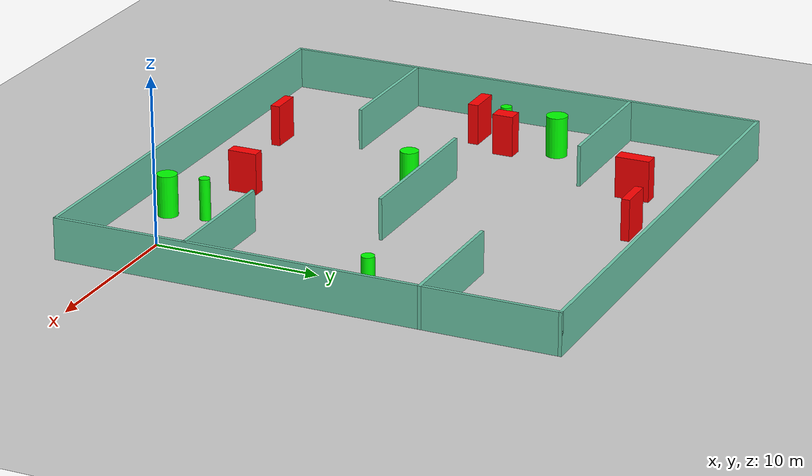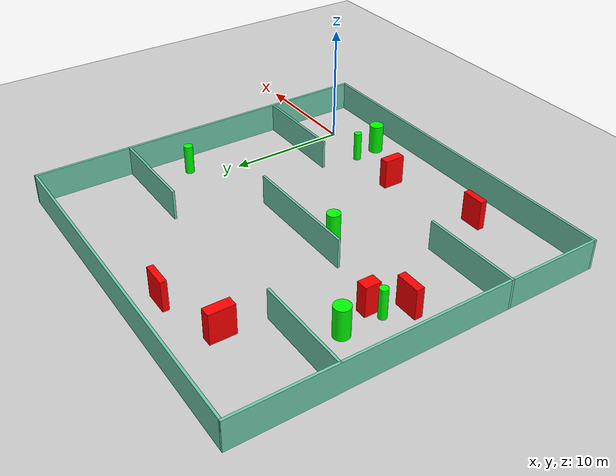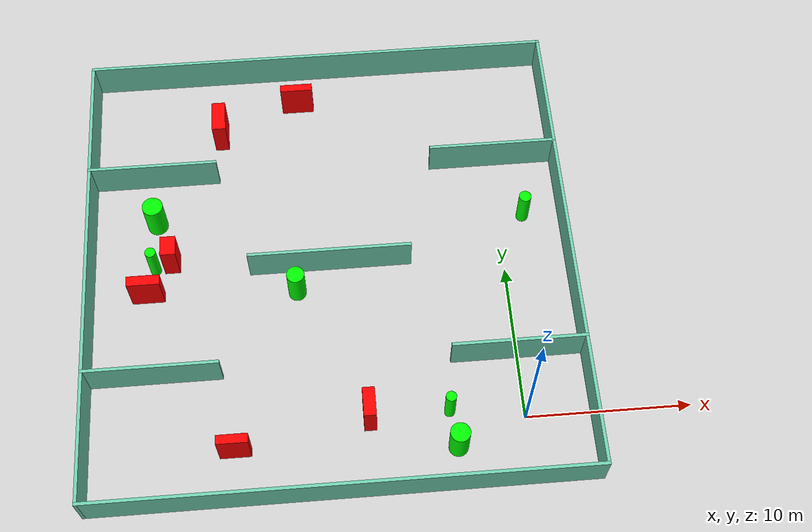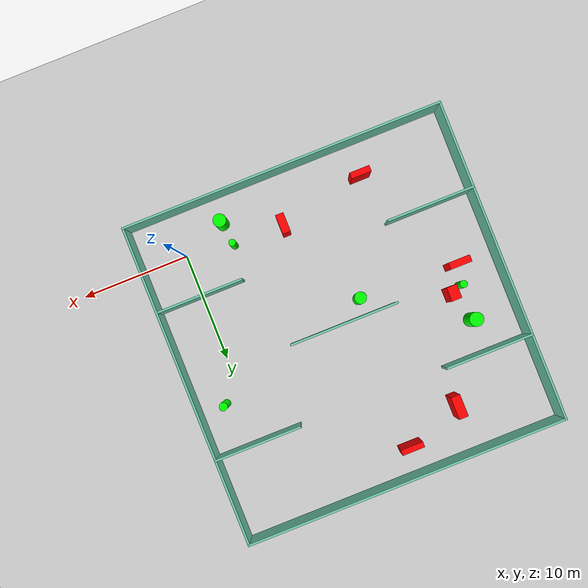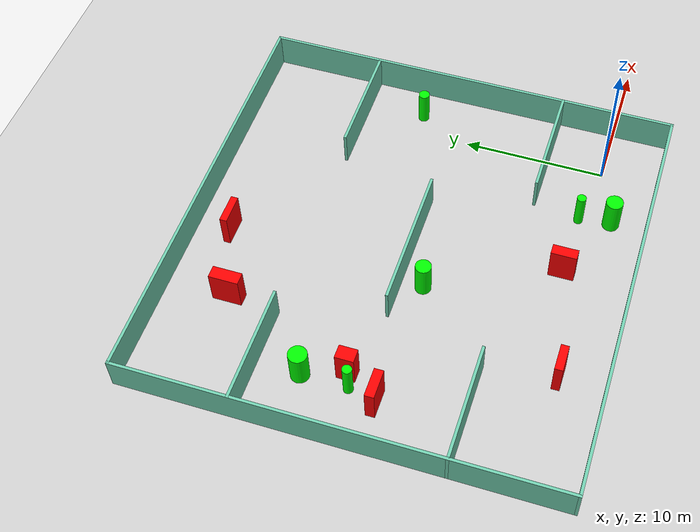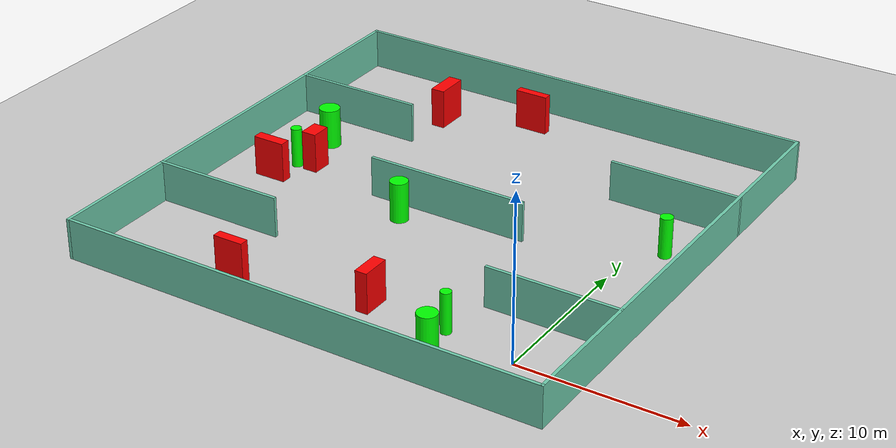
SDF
<sdf version="1.7">
 <world name="default">
  <light name="sun" type="directional">
   <pose>0 0 10 0 -0 0</pose>
   <diffuse>0.8 0.8 0.8 1</diffuse>
   <specular>0.2 0.2 0.2 1</specular>
   <attenuation>
    <range>1000</range>
    <constant>0.9</constant>
    <linear>0.01</linear>
    <quadratic>0.001</quadratic>
   </attenuation>
   <direction>-0.5 0.1 -0.9</direction>
   <spot><inner_angle>0</inner_angle><outer_angle>0</outer_angle><falloff>0</falloff></spot>
  </light>
  <model name="ground_plane">
   <static>1</static>
   <link name="link">
    <collision name="collision">
     <geometry><plane><normal>0 0 1</normal><size>100 100</size></plane></geometry>
     <surface>
      <contact><collide_bitmask>65535</collide_bitmask></contact>
      <friction><ode><mu>100</mu><mu2>50</mu2></ode></friction>
     </surface>
    </collision>
    <visual name="visual">
     <cast_shadows>0</cast_shadows>
     <geometry><plane><normal>0 0 1</normal><size>100 100</size></plane></geometry>
     <material>
      <script><uri>file://media/materials/scripts/gazebo.material</uri><name>Gazebo/Grey</name></script>
     </material>
    </visual>
   </link>
  </model>
  <gravity>0 0 -9.8</gravity>
  <magnetic_field>6e-06 2.3e-05 -4.2e-05</magnetic_field>
  <atmosphere type="adiabatic"/>
  <physics type="ode">
   <max_step_size>0.001</max_step_size>
   <real_time_factor>1</real_time_factor>
   <real_time_update_rate>1000</real_time_update_rate>
  </physics>
  <scene><ambient>0.4 0.4 0.4 1</ambient><background>0.7 0.7 0.7 1</background><shadows>1</shadows></scene>
  <spherical_coordinates>
   <surface_model>EARTH_WGS84</surface_model>
   <latitude_deg>0</latitude_deg>
   <longitude_deg>0</longitude_deg>
   <elevation>0</elevation>
   <heading_deg>0</heading_deg>
  </spherical_coordinates>
  <model name="my_base_walls">
   <link name="Wall_10">
    <collision name="Wall_10_Collision">
     <geometry><box><size>8.2 0.2 2.5</size></box></geometry>
     <pose>0 0 1.25 0 -0 0</pose>
    </collision>
    <visual name="Wall_10_Visual">
     <pose>0 0 1.25 0 -0 0</pose>
     <geometry><box><size>8.2 0.2 2.5</size></box></geometry>
     <material>
      <script><uri>file://media/materials/scripts/gazebo.material</uri><name>Gazebo/Grey</name></script>
      <ambient>0.435294 0.796078 0.67451 1</ambient>
     </material>
     <meta><layer>0</layer></meta>
    </visual>
    <pose>-11 -7 0 0 -0 0</pose>
   </link>
   <link name="Wall_12">
    <collision name="Wall_12_Collision">
     <geometry><box><size>8.2 0.2 2.5</size></box></geometry>
     <pose>0 0 1.25 0 -0 0</pose>
    </collision>
    <visual name="Wall_12_Visual">
     <pose>0 0 1.25 0 -0 0</pose>
     <geometry><box><size>8.2 0.2 2.5</size></box></geometry>
     <material>
      <script><uri>file://media/materials/scripts/gazebo.material</uri><name>Gazebo/Grey</name></script>
      <ambient>0.435294 0.796078 0.67451 1</ambient>
     </material>
     <meta><layer>0</layer></meta>
    </visual>
    <pose>-11 7 0 0 -0 0</pose>
   </link>
   <link name="Wall_14">
    <collision name="Wall_14_Collision">
     <geometry><box><size>8.2 0.2 2.5</size></box></geometry>
     <pose>0 0 1.25 0 -0 0</pose>
    </collision>
    <visual name="Wall_14_Visual">
     <pose>0 0 1.25 0 -0 0</pose>
     <geometry><box><size>8.2 0.2 2.5</size></box></geometry>
     <material>
      <script><uri>file://media/materials/scripts/gazebo.material</uri><name>Gazebo/Grey</name></script>
      <ambient>0.435294 0.796078 0.67451 1</ambient>
     </material>
     <meta><layer>0</layer></meta>
    </visual>
    <pose>11 7 0 0 -0 3.14159</pose>
   </link>
   <link name="Wall_16">
    <collision name="Wall_16_Collision">
     <geometry><box><size>10.2 0.2 2.5</size></box></geometry>
     <pose>0 0 1.25 0 -0 0</pose>
    </collision>
    <visual name="Wall_16_Visual">
     <pose>0 0 1.25 0 -0 0</pose>
     <geometry><box><size>10.2 0.2 2.5</size></box></geometry>
     <material>
      <script><uri>file://media/materials/scripts/gazebo.material</uri><name>Gazebo/Grey</name></script>
      <ambient>0.435294 0.796078 0.67451 1</ambient>
     </material>
     <meta><layer>0</layer></meta>
    </visual>
    <pose>0 0 0 0 -0 3.14159</pose>
   </link>
   <link name="Wall_2">
    <collision name="Wall_2_Collision">
     <geometry><box><size>30.2 0.2 2.5</size></box></geometry>
     <pose>0 0 1.25 0 -0 0</pose>
    </collision>
    <visual name="Wall_2_Visual">
     <pose>0 0 1.25 0 -0 0</pose>
     <geometry><box><size>30.2 0.2 2.5</size></box></geometry>
     <material>
      <script><uri>file://media/materials/scripts/gazebo.material</uri><name>Gazebo/Grey</name></script>
      <ambient>0.435294 0.796078 0.67451 1</ambient>
     </material>
     <meta><layer>0</layer></meta>
    </visual>
    <pose>0 -15 0 0 -0 3.14159</pose>
   </link>
   <link name="Wall_3">
    <collision name="Wall_3_Collision">
     <geometry><box><size>30.2 0.2 2.5</size></box></geometry>
     <pose>0 0 1.25 0 -0 0</pose>
    </collision>
    <visual name="Wall_3_Visual">
     <pose>0 0 1.25 0 -0 0</pose>
     <geometry><box><size>30.2 0.2 2.5</size></box></geometry>
     <material>
      <script><uri>file://media/materials/scripts/gazebo.material</uri><name>Gazebo/Grey</name></script>
      <ambient>0.435294 0.796078 0.67451 1</ambient>
     </material>
     <meta><layer>0</layer></meta>
    </visual>
    <pose>-15 0 0 0 -0 1.5708</pose>
   </link>
   <link name="Wall_4">
    <collision name="Wall_4_Collision">
     <geometry><box><size>30.2 0.2 2.5</size></box></geometry>
     <pose>0 0 1.25 0 -0 0</pose>
    </collision>
    <visual name="Wall_4_Visual">
     <pose>0 0 1.25 0 -0 0</pose>
     <geometry><box><size>30.2 0.2 2.5</size></box></geometry>
     <material>
      <script><uri>file://media/materials/scripts/gazebo.material</uri><name>Gazebo/Grey</name></script>
      <ambient>0.435294 0.796078 0.67451 1</ambient>
     </material>
     <meta><layer>0</layer></meta>
    </visual>
    <pose>0 15 0 0 -0 0</pose>
   </link>
   <link name="Wall_6">
    <collision name="Wall_6_Collision">
     <geometry><box><size>30.2 0.2 2.5</size></box></geometry>
     <pose>0 0 1.25 0 -0 0</pose>
    </collision>
    <visual name="Wall_6_Visual">
     <pose>0 0 1.25 0 -0 0</pose>
     <geometry><box><size>30.2 0.2 2.5</size></box></geometry>
     <material>
      <script><uri>file://media/materials/scripts/gazebo.material</uri><name>Gazebo/Grey</name></script>
      <ambient>0.435294 0.796078 0.67451 1</ambient>
     </material>
     <meta><layer>0</layer></meta>
    </visual>
    <pose>15 0 0 0 -0 1.5708</pose>
   </link>
   <link name="Wall_8">
    <collision name="Wall_8_Collision">
     <geometry><box><size>8.2 0.2 2.5</size></box></geometry>
     <pose>0 0 1.25 0 -0 0</pose>
    </collision>
    <visual name="Wall_8_Visual">
     <pose>0 0 1.25 0 -0 0</pose>
     <geometry><box><size>8.2 0.2 2.5</size></box></geometry>
     <material>
      <script><uri>file://media/materials/scripts/gazebo.material</uri><name>Gazebo/Grey</name></script>
      <ambient>0.435294 0.796078 0.67451 1</ambient>
     </material>
     <meta><layer>0</layer></meta>
    </visual>
    <pose>11 -7 0 0 -0 3.14159</pose>
   </link>
   <static>1</static>
   <pose>-11 11 0 0 -0 0</pose>
  </model>
  <model name="cylinder1">
   <static>1</static>
   <link name="link">
    <inertial>
     <mass>1</mass>
     <inertia><ixx>0.5</ixx><ixy>0</ixy><ixz>0</ixz><iyy>0.5</iyy><iyz>0</iyz><izz>1</izz></inertia>
    </inertial>
    <collision name="collision">
     <geometry><cylinder><radius>0.38406144618953975</radius><length>2.5</length></cylinder></geometry>
    </collision>
    <visual name="visual">
     <geometry><cylinder><radius>0.38406144618953975</radius><length>2.5</length></cylinder></geometry>
     <material>
      <ambient>0 1 0 1</ambient>
      <diffuse>0 1 0 1</diffuse>
      <specular>0.1 0.1 0.1 1</specular>
      <emissive>0 0 0 0</emissive>
     </material>
    </visual>
   </link>
   <pose>1.583605326559919 13.828259506173247 1.25 0 0 0</pose>
  </model>
  <model name="cylinder2">
   <static>1</static>
   <link name="link">
    <inertial>
     <mass>1</mass>
     <inertia><ixx>0.5</ixx><ixy>0</ixy><ixz>0</ixz><iyy>0.5</iyy><iyz>0</iyz><izz>1</izz></inertia>
    </inertial>
    <collision name="collision">
     <geometry><cylinder><radius>0.31943884041114007</radius><length>2.5</length></cylinder></geometry>
    </collision>
    <visual name="visual">
     <geometry><cylinder><radius>0.31943884041114007</radius><length>2.5</length></cylinder></geometry>
     <material>
      <ambient>0 1 0 1</ambient>
      <diffuse>0 1 0 1</diffuse>
      <specular>0.1 0.1 0.1 1</specular>
      <emissive>0 0 0 0</emissive>
     </material>
    </visual>
   </link>
   <pose>-4.476176306914885 0.7176779099080979 1.25 0 0 0</pose>
  </model>
  <model name="cylinder3">
   <static>1</static>
   <link name="link">
    <inertial>
     <mass>1</mass>
     <inertia><ixx>0.5</ixx><ixy>0</ixy><ixz>0</ixz><iyy>0.5</iyy><iyz>0</iyz><izz>1</izz></inertia>
    </inertial>
    <collision name="collision">
     <geometry><cylinder><radius>0.5952261674682486</radius><length>2.5</length></cylinder></geometry>
    </collision>
    <visual name="visual">
     <geometry><cylinder><radius>0.5952261674682486</radius><length>2.5</length></cylinder></geometry>
     <material>
      <ambient>0 1 0 1</ambient>
      <diffuse>0 1 0 1</diffuse>
      <specular>0.1 0.1 0.1 1</specular>
      <emissive>0 0 0 0</emissive>
     </material>
    </visual>
   </link>
   <pose>-4.172699542353586 -1.5197466927534666 1.25 0 0 0</pose>
  </model>
  <model name="cylinder4">
   <static>1</static>
   <link name="link">
    <inertial>
     <mass>1</mass>
     <inertia><ixx>0.5</ixx><ixy>0</ixy><ixz>0</ixz><iyy>0.5</iyy><iyz>0</iyz><izz>1</izz></inertia>
    </inertial>
    <collision name="collision">
     <geometry><cylinder><radius>0.5513036915420044</radius><length>2.5</length></cylinder></geometry>
    </collision>
    <visual name="visual">
     <geometry><cylinder><radius>0.5513036915420044</radius><length>2.5</length></cylinder></geometry>
     <material>
      <ambient>0 1 0 1</ambient>
      <diffuse>0 1 0 1</diffuse>
      <specular>0.1 0.1 0.1 1</specular>
      <emissive>0 0 0 0</emissive>
     </material>
    </visual>
   </link>
   <pose>-13.16973448030646 9.406613338654099 1.25 0 0 0</pose>
  </model>
  <model name="cylinder5">
   <static>1</static>
   <link name="link">
    <inertial>
     <mass>1</mass>
     <inertia><ixx>0.5</ixx><ixy>0</ixy><ixz>0</ixz><iyy>0.5</iyy><iyz>0</iyz><izz>1</izz></inertia>
    </inertial>
    <collision name="collision">
     <geometry><cylinder><radius>0.33356043478875885</radius><length>2.5</length></cylinder></geometry>
    </collision>
    <visual name="visual">
     <geometry><cylinder><radius>0.33356043478875885</radius><length>2.5</length></cylinder></geometry>
     <material>
      <ambient>0 1 0 1</ambient>
      <diffuse>0 1 0 1</diffuse>
      <specular>0.1 0.1 0.1 1</specular>
      <emissive>0 0 0 0</emissive>
     </material>
    </visual>
   </link>
   <pose>-22.039524862653735 11.649627011892758 1.25 0 0 0</pose>
  </model>
  <model name="cylinder6">
   <static>1</static>
   <link name="link">
    <inertial>
     <mass>1</mass>
     <inertia><ixx>0.5</ixx><ixy>0</ixy><ixz>0</ixz><iyy>0.5</iyy><iyz>0</iyz><izz>1</izz></inertia>
    </inertial>
    <collision name="collision">
     <geometry><cylinder><radius>0.6445848394651771</radius><length>2.5</length></cylinder></geometry>
    </collision>
    <visual name="visual">
     <geometry><cylinder><radius>0.6445848394651771</radius><length>2.5</length></cylinder></geometry>
     <material>
      <ambient>0 1 0 1</ambient>
      <diffuse>0 1 0 1</diffuse>
      <specular>0.1 0.1 0.1 1</specular>
      <emissive>0 0 0 0</emissive>
     </material>
    </visual>
   </link>
   <pose>-21.943033016373267 14.94390317183693 1.25 0 0 0</pose>
  </model>
  <model name="box1">
   <static>1</static>
   <link name="link">
    <inertial>
     <mass>1</mass>
     <inertia><ixx>0.083</ixx><ixy>0</ixy><ixz>0</ixz><iyy>0.083</iyy><iyz>0</iyz><izz>0.083</izz></inertia>
    </inertial>
    <collision name="collision">
     <geometry><box><size>2.018521602394943 0.6476782129183798 2.5</size></box></geometry>
    </collision>
    <visual name="visual">
     <geometry><box><size>2.018521602394943 0.6476782129183798 2.5</size></box></geometry>
     <material>
      <ambient>1 0 0 1</ambient>
      <diffuse>1 0 0 1</diffuse>
      <specular>0.1 0.1 0.1 1</specular>
      <emissive>0 0 0 0</emissive>
     </material>
    </visual>
    <sensor name="my_contact" type="contact">
     <contact><collision>box_collision</collision><topic>__default_topic__</topic></contact>
    </sensor>
   </link>
   <pose>-22.4648012980521 9.736976519565266 1.25 0 0 0</pose>
  </model>
  <model name="box2">
   <static>1</static>
   <link name="link">
    <inertial>
     <mass>1</mass>
     <inertia><ixx>0.083</ixx><ixy>0</ixy><ixz>0</ixz><iyy>0.083</iyy><iyz>0</iyz><izz>0.083</izz></inertia>
    </inertial>
    <collision name="collision">
     <geometry><box><size>0.7459668481711008 1.7723173284588751 2.5</size></box></geometry>
    </collision>
    <visual name="visual">
     <geometry><box><size>0.7459668481711008 1.7723173284588751 2.5</size></box></geometry>
     <material>
      <ambient>1 0 0 1</ambient>
      <diffuse>1 0 0 1</diffuse>
      <specular>0.1 0.1 0.1 1</specular>
      <emissive>0 0 0 0</emissive>
     </material>
    </visual>
    <sensor name="my_contact" type="contact">
     <contact><collision>box_collision</collision><topic>__default_topic__</topic></contact>
    </sensor>
   </link>
   <pose>-9.252907177501765 0.7924235224351861 1.25 0 0 0</pose>
  </model>
  <model name="box3">
   <static>1</static>
   <link name="link">
    <inertial>
     <mass>1</mass>
     <inertia><ixx>0.083</ixx><ixy>0</ixy><ixz>0</ixz><iyy>0.083</iyy><iyz>0</iyz><izz>0.083</izz></inertia>
    </inertial>
    <collision name="collision">
     <geometry><box><size>0.868148295088693 2.063611180588841 2.5</size></box></geometry>
    </collision>
    <visual name="visual">
     <geometry><box><size>0.868148295088693 2.063611180588841 2.5</size></box></geometry>
     <material>
      <ambient>1 0 0 1</ambient>
      <diffuse>1 0 0 1</diffuse>
      <specular>0.1 0.1 0.1 1</specular>
      <emissive>0 0 0 0</emissive>
     </material>
    </visual>
    <sensor name="my_contact" type="contact">
     <contact><collision>box_collision</collision><topic>__default_topic__</topic></contact>
    </sensor>
   </link>
   <pose>-17.69495337723084 21.55298472984388 1.25 0 0 0</pose>
  </model>
  <model name="box4">
   <static>1</static>
   <link name="link">
    <inertial>
     <mass>1</mass>
     <inertia><ixx>0.083</ixx><ixy>0</ixy><ixz>0</ixz><iyy>0.083</iyy><iyz>0</iyz><izz>0.083</izz></inertia>
    </inertial>
    <collision name="collision">
     <geometry><box><size>1.8650686265284877 0.5574772848851357 2.5</size></box></geometry>
    </collision>
    <visual name="visual">
     <geometry><box><size>1.8650686265284877 0.5574772848851357 2.5</size></box></geometry>
     <material>
      <ambient>1 0 0 1</ambient>
      <diffuse>1 0 0 1</diffuse>
      <specular>0.1 0.1 0.1 1</specular>
      <emissive>0 0 0 0</emissive>
     </material>
    </visual>
    <sensor name="my_contact" type="contact">
     <contact><collision>box_collision</collision><topic>__default_topic__</topic></contact>
    </sensor>
   </link>
   <pose>-17.250907335385538 -0.8656621476200788 1.25 0 0 0</pose>
  </model>
  <model name="box5">
   <static>1</static>
   <link name="link">
    <inertial>
     <mass>1</mass>
     <inertia><ixx>0.083</ixx><ixy>0</ixy><ixz>0</ixz><iyy>0.083</iyy><iyz>0</iyz><izz>0.083</izz></inertia>
    </inertial>
    <collision name="collision">
     <geometry><box><size>2.083976567258983 0.5033306934522424 2.5</size></box></geometry>
    </collision>
    <visual name="visual">
     <geometry><box><size>2.083976567258983 0.5033306934522424 2.5</size></box></geometry>
     <material>
      <ambient>1 0 0 1</ambient>
      <diffuse>1 0 0 1</diffuse>
      <specular>0.1 0.1 0.1 1</specular>
      <emissive>0 0 0 0</emissive>
     </material>
    </visual>
    <sensor name="my_contact" type="contact">
     <contact><collision>box_collision</collision><topic>__default_topic__</topic></contact>
    </sensor>
   </link>
   <pose>-12.518351111627664 23.426217937659484 1.25 0 0 0</pose>
  </model>
  <model name="box6">
   <static>1</static>
   <link name="link">
    <inertial>
     <mass>1</mass>
     <inertia><ixx>0.083</ixx><ixy>0</ixy><ixz>0</ixz><iyy>0.083</iyy><iyz>0</iyz><izz>0.083</izz></inertia>
    </inertial>
    <collision name="collision">
     <geometry><box><size>0.9488436634815788 1.278887043683464 2.5</size></box></geometry>
    </collision>
    <visual name="visual">
     <geometry><box><size>0.9488436634815788 1.278887043683464 2.5</size></box></geometry>
     <material>
      <ambient>1 0 0 1</ambient>
      <diffuse>1 0 0 1</diffuse>
      <specular>0.1 0.1 0.1 1</specular>
      <emissive>0 0 0 0</emissive>
     </material>
    </visual>
    <sensor name="my_contact" type="contact">
     <contact><collision>box_collision</collision><topic>__default_topic__</topic></contact>
    </sensor>
   </link>
   <pose>-20.983502149074884 12.056751567489075 1.25 0 0 0</pose>
  </model>
 </world>
</sdf>
